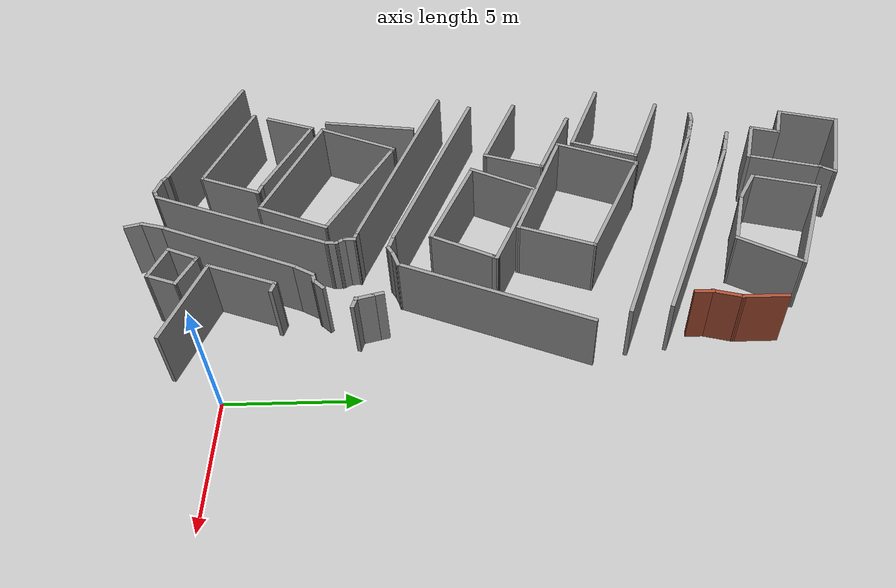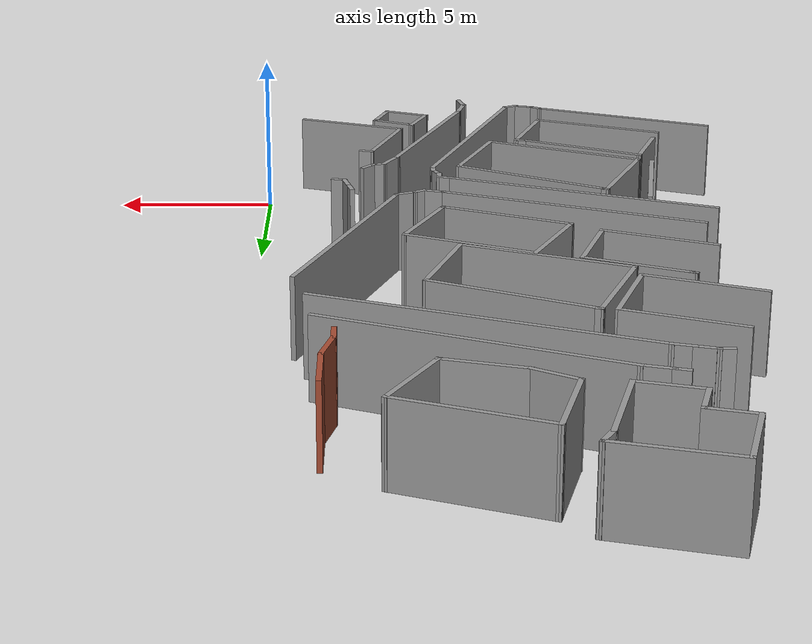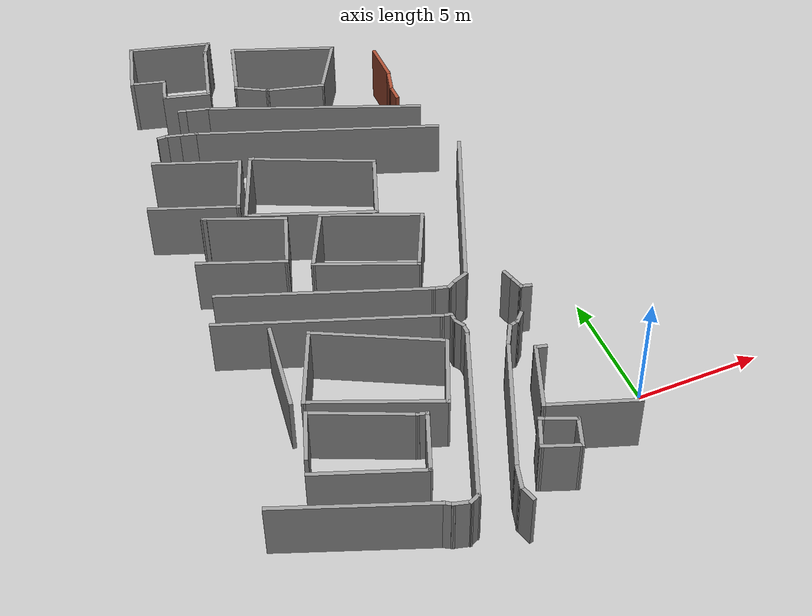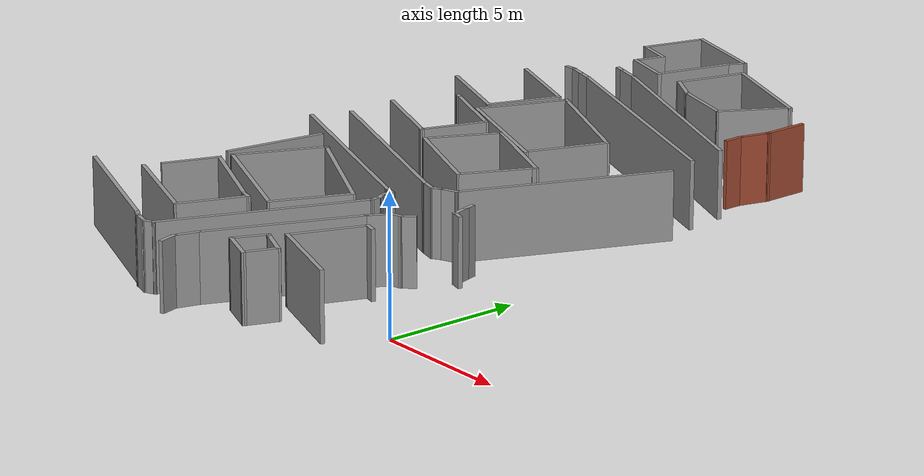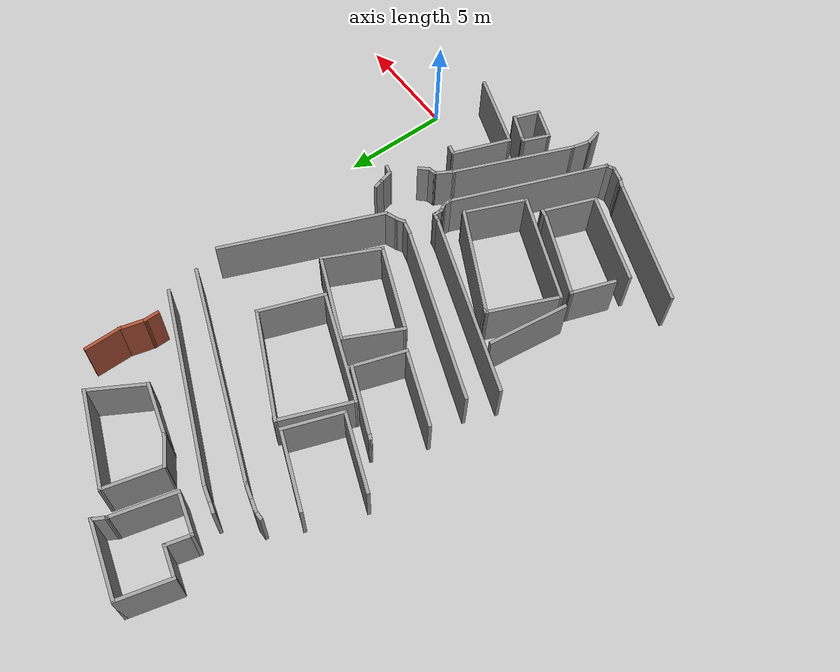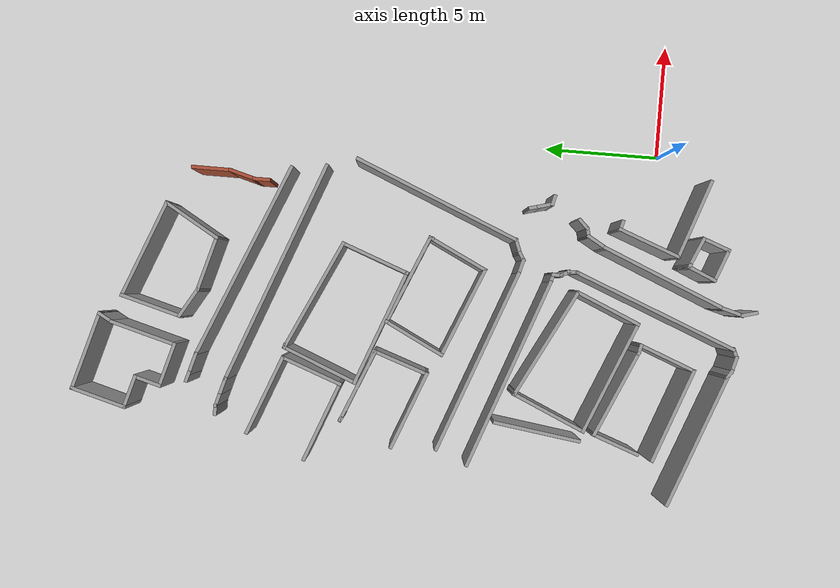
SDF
<sdf version="1.6">
 <model name="palazzo">
  <pose>-1.20783 -1.18535 0 0 -0 0</pose>
  <link name="Wall_1004">
   <collision name="Wall_1004_Collision">
    <geometry><box><size>3.78119 0.15 2.5</size></box></geometry>
    <pose>0 0 1.25 0 -0 0</pose>
   </collision>
   <visual name="Wall_1004_Visual">
    <pose>0 0 1.25 0 -0 0</pose>
    <geometry><box><size>3.78119 0.15 2.5</size></box></geometry>
    <material>
     <script><uri>file://media/materials/scripts/gazebo.material</uri><name>Gazebo/Grey</name></script>
     <ambient>1 1 1 1</ambient>
    </material>
    <meta><layer>0</layer></meta>
   </visual>
   <pose>-11.1316 5.89414 0 0 -0 1.43501</pose>
  </link>
  <link name="Wall_160">
   <collision name="Wall_160_Collision">
    <geometry><box><size>1 0.15 2.5</size></box></geometry>
    <pose>0 0 1.25 0 -0 0</pose>
   </collision>
   <visual name="Wall_160_Visual">
    <pose>0 0 1.25 0 -0 0</pose>
    <geometry><box><size>1 0.15 2.5</size></box></geometry>
    <material>
     <script><uri>file://media/materials/scripts/gazebo.material</uri><name>Gazebo/Grey</name></script>
     <ambient>1 1 1 1</ambient>
    </material>
    <meta><layer>0</layer></meta>
   </visual>
   <pose>-2.90729 3.99566 0 0 -0 -2.0944</pose>
  </link>
  <link name="Wall_216">
   <collision name="Wall_216_Collision">
    <geometry><box><size>1 0.15 2.5</size></box></geometry>
    <pose>0 0 1.25 0 -0 0</pose>
   </collision>
   <visual name="Wall_216_Visual">
    <pose>0 0 1.25 0 -0 0</pose>
    <geometry><box><size>1 0.15 2.5</size></box></geometry>
    <material>
     <script><uri>file://media/materials/scripts/gazebo.material</uri><name>Gazebo/Grey</name></script>
     <ambient>1 1 1 1</ambient>
    </material>
    <meta><layer>0</layer></meta>
   </visual>
   <pose>-5.38705 -1.99917 0 0 -0 1.309</pose>
  </link>
  <link name="Wall_218">
   <collision name="Wall_218_Collision">
    <geometry><box><size>5.79474 0.15 2.5</size></box></geometry>
    <pose>0 0 1.25 0 -0 0</pose>
   </collision>
   <visual name="Wall_218_Visual">
    <pose>0 0 1.25 0 -0 0</pose>
    <geometry><box><size>5.79474 0.15 2.5</size></box></geometry>
    <material>
     <script><uri>file://media/materials/scripts/gazebo.material</uri><name>Gazebo/Grey</name></script>
     <ambient>1 1 1 1</ambient>
    </material>
    <meta><layer>0</layer></meta>
   </visual>
   <pose>-4.19843 1.01948 0 0 -0 1.17865</pose>
  </link>
  <link name="Wall_220">
   <collision name="Wall_220_Collision">
    <geometry><box><size>0.75 0.15 2.5</size></box></geometry>
    <pose>0 0 1.25 0 -0 0</pose>
   </collision>
   <visual name="Wall_220_Visual">
    <pose>0 0 1.25 0 -0 0</pose>
    <geometry><box><size>0.75 0.15 2.5</size></box></geometry>
    <material>
     <script><uri>file://media/materials/scripts/gazebo.material</uri><name>Gazebo/Grey</name></script>
     <ambient>1 1 1 1</ambient>
    </material>
    <meta><layer>0</layer></meta>
   </visual>
   <pose>-5.41941 -2.69946 0 0 -0 -1.309</pose>
  </link>
  <link name="Wall_23">
   <collision name="Wall_23_Collision">
    <geometry><box><size>1.75 0.15 2.5</size></box></geometry>
    <pose>0 0 1.25 0 -0 0</pose>
   </collision>
   <visual name="Wall_23_Visual">
    <pose>0 0 1.25 0 -0 0</pose>
    <geometry><box><size>1.75 0.15 2.5</size></box></geometry>
    <material>
     <script><uri>file://media/materials/scripts/gazebo.material</uri><name>Gazebo/Bricks</name></script>
     <ambient>1 1 1 1</ambient>
    </material>
    <meta><layer>0</layer></meta>
   </visual>
   <pose>-1.16027 20.6107 0 0 -0 -1.5708</pose>
  </link>
  <link name="Wall_24">
   <collision name="Wall_24_Collision">
    <geometry><box><size>1.25 0.15 2.5</size></box></geometry>
    <pose>0 0 1.25 0 -0 0</pose>
   </collision>
   <visual name="Wall_24_Visual">
    <pose>0 0 1.25 0 -0 0</pose>
    <geometry><box><size>1.25 0.15 2.5</size></box></geometry>
    <material>
     <script><uri>file://media/materials/scripts/gazebo.material</uri><name>Gazebo/Bricks</name></script>
     <ambient>1 1 1 1</ambient>
    </material>
    <meta><layer>0</layer></meta>
   </visual>
   <pose>-1.30262 19.2794 0 0 -0 -1.8326</pose>
  </link>
  <link name="Wall_25">
   <collision name="Wall_25_Collision">
    <geometry><box><size>0.75 0.15 2.5</size></box></geometry>
    <pose>0 0 1.25 0 -0 0</pose>
   </collision>
   <visual name="Wall_25_Visual">
    <pose>0 0 1.25 0 -0 0</pose>
    <geometry><box><size>0.75 0.15 2.5</size></box></geometry>
    <material>
     <script><uri>file://media/materials/scripts/gazebo.material</uri><name>Gazebo/Bricks</name></script>
     <ambient>1 1 1 1</ambient>
    </material>
    <meta><layer>0</layer></meta>
   </visual>
   <pose>-1.44497 18.4482 0 0 -0 -1.5708</pose>
  </link>
  <link name="Wall_255">
   <collision name="Wall_255_Collision">
    <geometry><box><size>0.510576 0.15 2.5</size></box></geometry>
    <pose>0 0 1.25 0 -0 0</pose>
   </collision>
   <visual name="Wall_255_Visual">
    <pose>0 0 1.25 0 -0 0</pose>
    <geometry><box><size>0.510576 0.15 2.5</size></box></geometry>
    <material>
     <script><uri>file://media/materials/scripts/gazebo.material</uri><name>Gazebo/Grey</name></script>
     <ambient>1 1 1 1</ambient>
    </material>
    <meta><layer>0</layer></meta>
   </visual>
   <pose>-7.14053 -2.22192 0 0 -0 -2.71135</pose>
  </link>
  <link name="Wall_256">
   <collision name="Wall_256_Collision">
    <geometry><box><size>0.75 0.15 2.5</size></box></geometry>
    <pose>0 0 1.25 0 -0 0</pose>
   </collision>
   <visual name="Wall_256_Visual">
    <pose>0 0 1.25 0 -0 0</pose>
    <geometry><box><size>0.75 0.15 2.5</size></box></geometry>
    <material>
     <script><uri>file://media/materials/scripts/gazebo.material</uri><name>Gazebo/Grey</name></script>
     <ambient>1 1 1 1</ambient>
    </material>
    <meta><layer>0</layer></meta>
   </visual>
   <pose>-7.59417 -2.21947 0 0 -0 2.87979</pose>
  </link>
  <link name="Wall_257">
   <collision name="Wall_257_Collision">
    <geometry><box><size>0.5 0.15 2.5</size></box></geometry>
    <pose>0 0 1.25 0 -0 0</pose>
   </collision>
   <visual name="Wall_257_Visual">
    <pose>0 0 1.25 0 -0 0</pose>
    <geometry><box><size>0.5 0.15 2.5</size></box></geometry>
    <material>
     <script><uri>file://media/materials/scripts/gazebo.material</uri><name>Gazebo/Grey</name></script>
     <ambient>1 1 1 1</ambient>
    </material>
    <meta><layer>0</layer></meta>
   </visual>
   <pose>-8.0355 -2.05432 0 0 -0 2.61799</pose>
  </link>
  <link name="Wall_260">
   <collision name="Wall_260_Collision">
    <geometry><box><size>6.09185 0.15 2.5</size></box></geometry>
    <pose>0 0 1.25 0 -0 0</pose>
   </collision>
   <visual name="Wall_260_Visual">
    <pose>0 0 1.25 0 -0 0</pose>
    <geometry><box><size>6.09185 0.15 2.5</size></box></geometry>
    <material>
     <script><uri>file://media/materials/scripts/gazebo.material</uri><name>Gazebo/Grey</name></script>
     <ambient>1 1 1 1</ambient>
    </material>
    <meta><layer>0</layer></meta>
   </visual>
   <pose>-10.9591 -0.898025 0 0 -0 -0.368002</pose>
  </link>
  <link name="Wall_30">
   <collision name="Wall_30_Collision">
    <geometry><box><size>2.75 0.15 2.5</size></box></geometry>
    <pose>0 0 1.25 0 -0 0</pose>
   </collision>
   <visual name="Wall_30_Visual">
    <pose>0 0 1.25 0 -0 0</pose>
    <geometry><box><size>2.75 0.15 2.5</size></box></geometry>
    <material>
     <script><uri>file://media/materials/scripts/gazebo.material</uri><name>Gazebo/Grey</name></script>
     <ambient>1 1 1 1</ambient>
    </material>
    <meta><layer>0</layer></meta>
   </visual>
   <pose>-7.18393 22.6784 0 0 -0 -1.8326</pose>
  </link>
  <link name="Wall_31">
   <collision name="Wall_31_Collision">
    <geometry><box><size>1.5 0.15 2.5</size></box></geometry>
    <pose>0 0 1.25 0 -0 0</pose>
   </collision>
   <visual name="Wall_31_Visual">
    <pose>0 0 1.25 0 -0 0</pose>
    <geometry><box><size>1.5 0.15 2.5</size></box></geometry>
    <material>
     <script><uri>file://media/materials/scripts/gazebo.material</uri><name>Gazebo/Grey</name></script>
     <ambient>1 1 1 1</ambient>
    </material>
    <meta><layer>0</layer></meta>
   </visual>
   <pose>-6.93583 21.0852 0 0 -0 -0.523599</pose>
  </link>
  <link name="Wall_32">
   <collision name="Wall_32_Collision">
    <geometry><box><size>2.5 0.15 2.5</size></box></geometry>
    <pose>0 0 1.25 0 -0 0</pose>
   </collision>
   <visual name="Wall_32_Visual">
    <pose>0 0 1.25 0 -0 0</pose>
    <geometry><box><size>2.5 0.15 2.5</size></box></geometry>
    <material>
     <script><uri>file://media/materials/scripts/gazebo.material</uri><name>Gazebo/Grey</name></script>
     <ambient>1 1 1 1</ambient>
    </material>
    <meta><layer>0</layer></meta>
   </visual>
   <pose>-5.2163 20.4436 0 0 -0 -0.261799</pose>
  </link>
  <link name="Wall_33">
   <collision name="Wall_33_Collision">
    <geometry><box><size>2.75 0.15 2.5</size></box></geometry>
    <pose>0 0 1.25 0 -0 0</pose>
   </collision>
   <visual name="Wall_33_Visual">
    <pose>0 0 1.25 0 -0 0</pose>
    <geometry><box><size>2.75 0.15 2.5</size></box></geometry>
    <material>
     <script><uri>file://media/materials/scripts/gazebo.material</uri><name>Gazebo/Grey</name></script>
     <ambient>1 1 1 1</ambient>
    </material>
    <meta><layer>0</layer></meta>
   </visual>
   <pose>-3.43134 21.2654 0 0 -0 1.0472</pose>
  </link>
  <link name="Wall_34">
   <collision name="Wall_34_Collision">
    <geometry><box><size>4.49904 0.15 2.5</size></box></geometry>
    <pose>0 0 1.25 0 -0 0</pose>
   </collision>
   <visual name="Wall_34_Visual">
    <pose>0 0 1.25 0 -0 0</pose>
    <geometry><box><size>4.49904 0.15 2.5</size></box></geometry>
    <material>
     <script><uri>file://media/materials/scripts/gazebo.material</uri><name>Gazebo/Grey</name></script>
     <ambient>1 1 1 1</ambient>
    </material>
    <meta><layer>0</layer></meta>
   </visual>
   <pose>-4.8144 23.1627 0 0 -0 2.77891</pose>
  </link>
  <link name="Wall_36">
   <collision name="Wall_36_Collision">
    <geometry><box><size>2.5 0.15 2.5</size></box></geometry>
    <pose>0 0 1.25 0 -0 0</pose>
   </collision>
   <visual name="Wall_36_Visual">
    <pose>0 0 1.25 0 -0 0</pose>
    <geometry><box><size>2.5 0.15 2.5</size></box></geometry>
    <material>
     <script><uri>file://media/materials/scripts/gazebo.material</uri><name>Gazebo/Grey</name></script>
     <ambient>1 1 1 1</ambient>
    </material>
    <meta><layer>0</layer></meta>
   </visual>
   <pose>-11.2469 24.5452 0 0 -0 -1.8326</pose>
  </link>
  <link name="Wall_37">
   <collision name="Wall_37_Collision">
    <geometry><box><size>1.5 0.15 2.5</size></box></geometry>
    <pose>0 0 1.25 0 -0 0</pose>
   </collision>
   <visual name="Wall_37_Visual">
    <pose>0 0 1.25 0 -0 0</pose>
    <geometry><box><size>1.5 0.15 2.5</size></box></geometry>
    <material>
     <script><uri>file://media/materials/scripts/gazebo.material</uri><name>Gazebo/Grey</name></script>
     <ambient>1 1 1 1</ambient>
    </material>
    <meta><layer>0</layer></meta>
   </visual>
   <pose>-10.899 23.2356 0 0 -0 -0.261799</pose>
  </link>
  <link name="Wall_38">
   <collision name="Wall_38_Collision">
    <geometry><box><size>1.25 0.15 2.5</size></box></geometry>
    <pose>0 0 1.25 0 -0 0</pose>
   </collision>
   <visual name="Wall_38_Visual">
    <pose>0 0 1.25 0 -0 0</pose>
    <geometry><box><size>1.25 0.15 2.5</size></box></geometry>
    <material>
     <script><uri>file://media/materials/scripts/gazebo.material</uri><name>Gazebo/Grey</name></script>
     <ambient>1 1 1 1</ambient>
    </material>
    <meta><layer>0</layer></meta>
   </visual>
   <pose>-10.3893 22.5296 0 0 -0 -1.8326</pose>
  </link>
  <link name="Wall_39">
   <collision name="Wall_39_Collision">
    <geometry><box><size>2 0.15 2.5</size></box></geometry>
    <pose>0 0 1.25 0 -0 0</pose>
   </collision>
   <visual name="Wall_39_Visual">
    <pose>0 0 1.25 0 -0 0</pose>
    <geometry><box><size>2 0.15 2.5</size></box></geometry>
    <material>
     <script><uri>file://media/materials/scripts/gazebo.material</uri><name>Gazebo/Grey</name></script>
     <ambient>1 1 1 1</ambient>
    </material>
    <meta><layer>0</layer></meta>
   </visual>
   <pose>-9.63821 21.7589 0 0 -0 -0.261799</pose>
  </link>
  <link name="Wall_40">
   <collision name="Wall_40_Collision">
    <geometry><box><size>3 0.15 2.5</size></box></geometry>
    <pose>0 0 1.25 0 -0 0</pose>
   </collision>
   <visual name="Wall_40_Visual">
    <pose>0 0 1.25 0 -0 0</pose>
    <geometry><box><size>3 0.15 2.5</size></box></geometry>
    <material>
     <script><uri>file://media/materials/scripts/gazebo.material</uri><name>Gazebo/Grey</name></script>
     <ambient>1 1 1 1</ambient>
    </material>
    <meta><layer>0</layer></meta>
   </visual>
   <pose>-8.37591 22.896 0 0 -0 1.309</pose>
  </link>
  <link name="Wall_42">
   <collision name="Wall_42_Collision">
    <geometry><box><size>3.5 0.15 2.5</size></box></geometry>
    <pose>0 0 1.25 0 -0 0</pose>
   </collision>
   <visual name="Wall_42_Visual">
    <pose>0 0 1.25 0 -0 0</pose>
    <geometry><box><size>3.5 0.15 2.5</size></box></geometry>
    <material>
     <script><uri>file://media/materials/scripts/gazebo.material</uri><name>Gazebo/Grey</name></script>
     <ambient>1 1 1 1</ambient>
    </material>
    <meta><layer>0</layer></meta>
   </visual>
   <pose>-9.32484 25.2467 0 0 -0 -0.261799</pose>
  </link>
  <link name="Wall_43">
   <collision name="Wall_43_Collision">
    <geometry><box><size>0.768466 0.15 2.5</size></box></geometry>
    <pose>0 0 1.25 0 -0 0</pose>
   </collision>
   <visual name="Wall_43_Visual">
    <pose>0 0 1.25 0 -0 0</pose>
    <geometry><box><size>0.768466 0.15 2.5</size></box></geometry>
    <material>
     <script><uri>file://media/materials/scripts/gazebo.material</uri><name>Gazebo/Grey</name></script>
     <ambient>1 1 1 1</ambient>
    </material>
    <meta><layer>0</layer></meta>
   </visual>
   <pose>-7.857 24.5428 0 0 -0 -2.07757</pose>
  </link>
  <link name="Wall_666">
   <collision name="Wall_666_Collision">
    <geometry><box><size>1 0.15 2.5</size></box></geometry>
    <pose>0 0 1.25 0 -0 0</pose>
   </collision>
   <visual name="Wall_666_Visual">
    <pose>0 0 1.25 0 -0 0</pose>
    <geometry><box><size>1 0.15 2.5</size></box></geometry>
    <material>
     <script><uri>file://media/materials/scripts/gazebo.material</uri><name>Gazebo/Grey</name></script>
     <ambient>1 1 1 1</ambient>
    </material>
    <meta><layer>0</layer></meta>
   </visual>
   <pose>-9.47326 20.685 0 0 -0 -0.261799</pose>
  </link>
  <link name="Wall_667">
   <collision name="Wall_667_Collision">
    <geometry><box><size>9.03925 0.15 2.5</size></box></geometry>
    <pose>0 0 1.25 0 -0 0</pose>
   </collision>
   <visual name="Wall_667_Visual">
    <pose>0 0 1.25 0 -0 0</pose>
    <geometry><box><size>9.03925 0.15 2.5</size></box></geometry>
    <material>
     <script><uri>file://media/materials/scripts/gazebo.material</uri><name>Gazebo/Grey</name></script>
     <ambient>1 1 1 1</ambient>
    </material>
    <meta><layer>0</layer></meta>
   </visual>
   <pose>-4.94569 18.9003 0 0 -0 -0.386327</pose>
  </link>
  <link name="Wall_672">
   <collision name="Wall_672_Collision">
    <geometry><box><size>10.1614 0.15 2.5</size></box></geometry>
    <pose>0 0 1.25 0 -0 0</pose>
   </collision>
   <visual name="Wall_672_Visual">
    <pose>0 0 1.25 0 -0 0</pose>
    <geometry><box><size>10.1614 0.15 2.5</size></box></geometry>
    <material>
     <script><uri>file://media/materials/scripts/gazebo.material</uri><name>Gazebo/Grey</name></script>
     <ambient>1 1 1 1</ambient>
    </material>
    <meta><layer>0</layer></meta>
   </visual>
   <pose>-5.32134 17.4885 0 0 -0 -0.357181</pose>
  </link>
  <link name="Wall_674">
   <collision name="Wall_674_Collision">
    <geometry><box><size>0.75 0.15 2.5</size></box></geometry>
    <pose>0 0 1.25 0 -0 0</pose>
   </collision>
   <visual name="Wall_674_Visual">
    <pose>0 0 1.25 0 -0 0</pose>
    <geometry><box><size>0.75 0.15 2.5</size></box></geometry>
    <material>
     <script><uri>file://media/materials/scripts/gazebo.material</uri><name>Gazebo/Grey</name></script>
     <ambient>1 1 1 1</ambient>
    </material>
    <meta><layer>0</layer></meta>
   </visual>
   <pose>-10.3009 19.3163 0 0 -0 2.87979</pose>
  </link>
  <link name="Wall_675">
   <collision name="Wall_675_Collision">
    <geometry><box><size>0.75 0.15 2.5</size></box></geometry>
    <pose>0 0 1.25 0 -0 0</pose>
   </collision>
   <visual name="Wall_675_Visual">
    <pose>0 0 1.25 0 -0 0</pose>
    <geometry><box><size>0.75 0.15 2.5</size></box></geometry>
    <material>
     <script><uri>file://media/materials/scripts/gazebo.material</uri><name>Gazebo/Grey</name></script>
     <ambient>1 1 1 1</ambient>
    </material>
    <meta><layer>0</layer></meta>
   </visual>
   <pose>-10.8804 19.4716 0 0 -0 2.87979</pose>
  </link>
  <link name="Wall_676">
   <collision name="Wall_676_Collision">
    <geometry><box><size>0.5 0.15 2.5</size></box></geometry>
    <pose>0 0 1.25 0 -0 0</pose>
   </collision>
   <visual name="Wall_676_Visual">
    <pose>0 0 1.25 0 -0 0</pose>
    <geometry><box><size>0.5 0.15 2.5</size></box></geometry>
    <material>
     <script><uri>file://media/materials/scripts/gazebo.material</uri><name>Gazebo/Grey</name></script>
     <ambient>1 1 1 1</ambient>
    </material>
    <meta><layer>0</layer></meta>
   </visual>
   <pose>-11.3452 19.5493 0 0 -0 3.14159</pose>
  </link>
  <link name="Wall_682">
   <collision name="Wall_682_Collision">
    <geometry><box><size>0.5 0.15 2.5</size></box></geometry>
    <pose>0 0 1.25 0 -0 0</pose>
   </collision>
   <visual name="Wall_682_Visual">
    <pose>0 0 1.25 0 -0 0</pose>
    <geometry><box><size>0.5 0.15 2.5</size></box></geometry>
    <material>
     <script><uri>file://media/materials/scripts/gazebo.material</uri><name>Gazebo/Grey</name></script>
     <ambient>1 1 1 1</ambient>
    </material>
    <meta><layer>0</layer></meta>
   </visual>
   <pose>-10.0528 20.8403 0 0 -0 2.87979</pose>
  </link>
  <link name="Wall_697">
   <collision name="Wall_697_Collision">
    <geometry><box><size>7.71367 0.15 2.5</size></box></geometry>
    <pose>0 0 1.25 0 -0 0</pose>
   </collision>
   <visual name="Wall_697_Visual">
    <pose>0 0 1.25 0 -0 0</pose>
    <geometry><box><size>7.71367 0.15 2.5</size></box></geometry>
    <material>
     <script><uri>file://media/materials/scripts/gazebo.material</uri><name>Gazebo/Grey</name></script>
     <ambient>1 1 1 1</ambient>
    </material>
    <meta><layer>0</layer></meta>
   </visual>
   <pose>-1.6657 10.9339 0 0 -0 1.18054</pose>
  </link>
  <link name="Wall_707">
   <collision name="Wall_707_Collision">
    <geometry><box><size>0.5 0.15 2.5</size></box></geometry>
    <pose>0 0 1.25 0 -0 0</pose>
   </collision>
   <visual name="Wall_707_Visual">
    <pose>0 0 1.25 0 -0 0</pose>
    <geometry><box><size>0.5 0.15 2.5</size></box></geometry>
    <material>
     <script><uri>file://media/materials/scripts/gazebo.material</uri><name>Gazebo/Grey</name></script>
     <ambient>1 1 1 1</ambient>
    </material>
    <meta><layer>0</layer></meta>
   </visual>
   <pose>-1.65656 6.76296 0 0 -0 -1.309</pose>
  </link>
  <link name="Wall_708">
   <collision name="Wall_708_Collision">
    <geometry><box><size>0.75 0.15 2.5</size></box></geometry>
    <pose>0 0 1.25 0 -0 0</pose>
   </collision>
   <visual name="Wall_708_Visual">
    <pose>0 0 1.25 0 -0 0</pose>
    <geometry><box><size>0.75 0.15 2.5</size></box></geometry>
    <material>
     <script><uri>file://media/materials/scripts/gazebo.material</uri><name>Gazebo/Grey</name></script>
     <ambient>1 1 1 1</ambient>
    </material>
    <meta><layer>0</layer></meta>
   </visual>
   <pose>-1.53362 6.30415 0 0 -0 -1.309</pose>
  </link>
  <link name="Wall_709">
   <collision name="Wall_709_Collision">
    <geometry><box><size>0.5 0.15 2.5</size></box></geometry>
    <pose>0 0 1.25 0 -0 0</pose>
   </collision>
   <visual name="Wall_709_Visual">
    <pose>0 0 1.25 0 -0 0</pose>
    <geometry><box><size>0.5 0.15 2.5</size></box></geometry>
    <material>
     <script><uri>file://media/materials/scripts/gazebo.material</uri><name>Gazebo/Grey</name></script>
     <ambient>1 1 1 1</ambient>
    </material>
    <meta><layer>0</layer></meta>
   </visual>
   <pose>-1.28694 5.96908 0 0 -0 -0.261799</pose>
  </link>
  <link name="Wall_723">
   <collision name="Wall_723_Collision">
    <geometry><box><size>0.5 0.15 2.5</size></box></geometry>
    <pose>0 0 1.25 0 -0 0</pose>
   </collision>
   <visual name="Wall_723_Visual">
    <pose>0 0 1.25 0 -0 0</pose>
    <geometry><box><size>0.5 0.15 2.5</size></box></geometry>
    <material>
     <script><uri>file://media/materials/scripts/gazebo.material</uri><name>Gazebo/Grey</name></script>
     <ambient>1 1 1 1</ambient>
    </material>
    <meta><layer>0</layer></meta>
   </visual>
   <pose>-2.52576 4.40902 0 0 -0 0.261799</pose>
  </link>
  <link name="Wall_724">
   <collision name="Wall_724_Collision">
    <geometry><box><size>0.60709 0.15 2.5</size></box></geometry>
    <pose>0 0 1.25 0 -0 0</pose>
   </collision>
   <visual name="Wall_724_Visual">
    <pose>0 0 1.25 0 -0 0</pose>
    <geometry><box><size>0.60709 0.15 2.5</size></box></geometry>
    <material>
     <script><uri>file://media/materials/scripts/gazebo.material</uri><name>Gazebo/Grey</name></script>
     <ambient>1 1 1 1</ambient>
    </material>
    <meta><layer>0</layer></meta>
   </visual>
   <pose>-2.19854 4.61927 0 0 -0 0.806383</pose>
  </link>
  <link name="Wall_726">
   <collision name="Wall_726_Collision">
    <geometry><box><size>0.5 0.15 2.5</size></box></geometry>
    <pose>0 0 1.25 0 -0 0</pose>
   </collision>
   <visual name="Wall_726_Visual">
    <pose>0 0 1.25 0 -0 0</pose>
    <geometry><box><size>0.5 0.15 2.5</size></box></geometry>
    <material>
     <script><uri>file://media/materials/scripts/gazebo.material</uri><name>Gazebo/Grey</name></script>
     <ambient>1 1 1 1</ambient>
    </material>
    <meta><layer>0</layer></meta>
   </visual>
   <pose>-3.79436 7.13805 0 0 -0 0.523599</pose>
  </link>
  <link name="Wall_727">
   <collision name="Wall_727_Collision">
    <geometry><box><size>0.72824 0.15 2.5</size></box></geometry>
    <pose>0 0 1.25 0 -0 0</pose>
   </collision>
   <visual name="Wall_727_Visual">
    <pose>0 0 1.25 0 -0 0</pose>
    <geometry><box><size>0.72824 0.15 2.5</size></box></geometry>
    <material>
     <script><uri>file://media/materials/scripts/gazebo.material</uri><name>Gazebo/Grey</name></script>
     <ambient>1 1 1 1</ambient>
    </material>
    <meta><layer>0</layer></meta>
   </visual>
   <pose>-3.3736 7.33098 0 0 -0 0.373286</pose>
  </link>
  <link name="Wall_729">
   <collision name="Wall_729_Collision">
    <geometry><box><size>0.75 0.15 2.5</size></box></geometry>
    <pose>0 0 1.25 0 -0 0</pose>
   </collision>
   <visual name="Wall_729_Visual">
    <pose>0 0 1.25 0 -0 0</pose>
    <geometry><box><size>0.75 0.15 2.5</size></box></geometry>
    <material>
     <script><uri>file://media/materials/scripts/gazebo.material</uri><name>Gazebo/Grey</name></script>
     <ambient>1 1 1 1</ambient>
    </material>
    <meta><layer>0</layer></meta>
   </visual>
   <pose>-4.23569 7.12819 0 0 -0 2.87979</pose>
  </link>
  <link name="Wall_731">
   <collision name="Wall_731_Collision">
    <geometry><box><size>8.36959 0.15 2.5</size></box></geometry>
    <pose>0 0 1.25 0 -0 0</pose>
   </collision>
   <visual name="Wall_731_Visual">
    <pose>0 0 1.25 0 -0 0</pose>
    <geometry><box><size>8.36959 0.15 2.5</size></box></geometry>
    <material>
     <script><uri>file://media/materials/scripts/gazebo.material</uri><name>Gazebo/Grey</name></script>
     <ambient>1 1 1 1</ambient>
    </material>
    <meta><layer>0</layer></meta>
   </visual>
   <pose>-8.37475 8.64579 0 0 -0 -0.357968</pose>
  </link>
  <link name="Wall_748">
   <collision name="Wall_748_Collision">
    <geometry><box><size>0.5 0.15 2.5</size></box></geometry>
    <pose>0 0 1.25 0 -0 0</pose>
   </collision>
   <visual name="Wall_748_Visual">
    <pose>0 0 1.25 0 -0 0</pose>
    <geometry><box><size>0.5 0.15 2.5</size></box></geometry>
    <material>
     <script><uri>file://media/materials/scripts/gazebo.material</uri><name>Gazebo/Grey</name></script>
     <ambient>1 1 1 1</ambient>
    </material>
    <meta><layer>0</layer></meta>
   </visual>
   <pose>-4.61651 5.77793 0 0 -0 2.87979</pose>
  </link>
  <link name="Wall_749">
   <collision name="Wall_749_Collision">
    <geometry><box><size>8.65807 0.15 2.5</size></box></geometry>
    <pose>0 0 1.25 0 -0 0</pose>
   </collision>
   <visual name="Wall_749_Visual">
    <pose>0 0 1.25 0 -0 0</pose>
    <geometry><box><size>8.65807 0.15 2.5</size></box></geometry>
    <material>
     <script><uri>file://media/materials/scripts/gazebo.material</uri><name>Gazebo/Grey</name></script>
     <ambient>1 1 1 1</ambient>
    </material>
    <meta><layer>0</layer></meta>
   </visual>
   <pose>-8.78122 7.28318 0 0 -0 2.79128</pose>
  </link>
  <link name="Wall_751">
   <collision name="Wall_751_Collision">
    <geometry><box><size>0.5 0.15 2.5</size></box></geometry>
    <pose>0 0 1.25 0 -0 0</pose>
   </collision>
   <visual name="Wall_751_Visual">
    <pose>0 0 1.25 0 -0 0</pose>
    <geometry><box><size>0.5 0.15 2.5</size></box></geometry>
    <material>
     <script><uri>file://media/materials/scripts/gazebo.material</uri><name>Gazebo/Grey</name></script>
     <ambient>1 1 1 1</ambient>
    </material>
    <meta><layer>0</layer></meta>
   </visual>
   <pose>-4.44748 5.55764 0 0 -0 -1.5708</pose>
  </link>
  <link name="Wall_754">
   <collision name="Wall_754_Collision">
    <geometry><box><size>0.5 0.15 2.5</size></box></geometry>
    <pose>0 0 1.25 0 -0 0</pose>
   </collision>
   <visual name="Wall_754_Visual">
    <pose>0 0 1.25 0 -0 0</pose>
    <geometry><box><size>0.5 0.15 2.5</size></box></geometry>
    <material>
     <script><uri>file://media/materials/scripts/gazebo.material</uri><name>Gazebo/Grey</name></script>
     <ambient>1 1 1 1</ambient>
    </material>
    <meta><layer>0</layer></meta>
   </visual>
   <pose>-4.35998 5.23108 0 0 -0 -1.0472</pose>
  </link>
  <link name="Wall_755">
   <collision name="Wall_755_Collision">
    <geometry><box><size>0.5 0.15 2.5</size></box></geometry>
    <pose>0 0 1.25 0 -0 0</pose>
   </collision>
   <visual name="Wall_755_Visual">
    <pose>0 0 1.25 0 -0 0</pose>
    <geometry><box><size>0.5 0.15 2.5</size></box></geometry>
    <material>
     <script><uri>file://media/materials/scripts/gazebo.material</uri><name>Gazebo/Grey</name></script>
     <ambient>1 1 1 1</ambient>
    </material>
    <meta><layer>0</layer></meta>
   </visual>
   <pose>-4.27248 4.90453 0 0 -0 -1.5708</pose>
  </link>
  <link name="Wall_757">
   <collision name="Wall_757_Collision">
    <geometry><box><size>7.53887 0.15 2.5</size></box></geometry>
    <pose>0 0 1.25 0 -0 0</pose>
   </collision>
   <visual name="Wall_757_Visual">
    <pose>0 0 1.25 0 -0 0</pose>
    <geometry><box><size>7.53887 0.15 2.5</size></box></geometry>
    <material>
     <script><uri>file://media/materials/scripts/gazebo.material</uri><name>Gazebo/Grey</name></script>
     <ambient>1 1 1 1</ambient>
    </material>
    <meta><layer>0</layer></meta>
   </visual>
   <pose>-5.62458 1.2914 0 0 -0 1.19611</pose>
  </link>
  <link name="Wall_789">
   <collision name="Wall_789_Collision">
    <geometry><box><size>0.25 0.15 2.5</size></box></geometry>
    <pose>0 0 1.25 0 -0 0</pose>
   </collision>
   <visual name="Wall_789_Visual">
    <pose>0 0 1.25 0 -0 0</pose>
    <geometry><box><size>0.25 0.15 2.5</size></box></geometry>
    <material>
     <script><uri>file://media/materials/scripts/gazebo.material</uri><name>Gazebo/Grey</name></script>
     <ambient>1 1 1 1</ambient>
    </material>
    <meta><layer>0</layer></meta>
   </visual>
   <pose>-3.33606 11.0279 0 0 -0 -1.8326</pose>
  </link>
  <link name="Wall_791">
   <collision name="Wall_791_Collision">
    <geometry><box><size>2.85803 0.15 2.5</size></box></geometry>
    <pose>0 0 1.25 0 -0 0</pose>
   </collision>
   <visual name="Wall_791_Visual">
    <pose>0 0 1.25 0 -0 0</pose>
    <geometry><box><size>2.85803 0.15 2.5</size></box></geometry>
    <material>
     <script><uri>file://media/materials/scripts/gazebo.material</uri><name>Gazebo/Grey</name></script>
     <ambient>1 1 1 1</ambient>
    </material>
    <meta><layer>0</layer></meta>
   </visual>
   <pose>-3.91099 9.8565 0 0 -0 1.12168</pose>
  </link>
  <link name="Wall_794">
   <collision name="Wall_794_Collision">
    <geometry><box><size>4.16515 0.15 2.5</size></box></geometry>
    <pose>0 0 1.25 0 -0 0</pose>
   </collision>
   <visual name="Wall_794_Visual">
    <pose>0 0 1.25 0 -0 0</pose>
    <geometry><box><size>4.16515 0.15 2.5</size></box></geometry>
    <material>
     <script><uri>file://media/materials/scripts/gazebo.material</uri><name>Gazebo/Grey</name></script>
     <ambient>1 1 1 1</ambient>
    </material>
    <meta><layer>0</layer></meta>
   </visual>
   <pose>-5.17472 11.8521 0 0 -0 -0.396783</pose>
  </link>
  <link name="Wall_796">
   <collision name="Wall_796_Collision">
    <geometry><box><size>2.87208 0.15 2.5</size></box></geometry>
    <pose>0 0 1.25 0 -0 0</pose>
   </collision>
   <visual name="Wall_796_Visual">
    <pose>0 0 1.25 0 -0 0</pose>
    <geometry><box><size>2.87208 0.15 2.5</size></box></geometry>
    <material>
     <script><uri>file://media/materials/scripts/gazebo.material</uri><name>Gazebo/Grey</name></script>
     <ambient>1 1 1 1</ambient>
    </material>
    <meta><layer>0</layer></meta>
   </visual>
   <pose>-7.63019 11.4082 0 0 -0 1.11109</pose>
  </link>
  <link name="Wall_798">
   <collision name="Wall_798_Collision">
    <geometry><box><size>4.19468 0.15 2.5</size></box></geometry>
    <pose>0 0 1.25 0 -0 0</pose>
   </collision>
   <visual name="Wall_798_Visual">
    <pose>0 0 1.25 0 -0 0</pose>
    <geometry><box><size>4.19468 0.15 2.5</size></box></geometry>
    <material>
     <script><uri>file://media/materials/scripts/gazebo.material</uri><name>Gazebo/Grey</name></script>
     <ambient>1 1 1 1</ambient>
    </material>
    <meta><layer>0</layer></meta>
   </visual>
   <pose>-6.36646 9.41259 0 0 -0 -0.393726</pose>
  </link>
  <link name="Wall_800">
   <collision name="Wall_800_Collision">
    <geometry><box><size>0.25 0.15 2.5</size></box></geometry>
    <pose>0 0 1.25 0 -0 0</pose>
   </collision>
   <visual name="Wall_800_Visual">
    <pose>0 0 1.25 0 -0 0</pose>
    <geometry><box><size>0.25 0.15 2.5</size></box></geometry>
    <material>
     <script><uri>file://media/materials/scripts/gazebo.material</uri><name>Gazebo/Grey</name></script>
     <ambient>1 1 1 1</ambient>
    </material>
    <meta><layer>0</layer></meta>
   </visual>
   <pose>-11.3021 14.2186 0 0 -0 -0.523599</pose>
  </link>
  <link name="Wall_802">
   <collision name="Wall_802_Collision">
    <geometry><box><size>3.41026 0.15 2.5</size></box></geometry>
    <pose>0 0 1.25 0 -0 0</pose>
   </collision>
   <visual name="Wall_802_Visual">
    <pose>0 0 1.25 0 -0 0</pose>
    <geometry><box><size>3.41026 0.15 2.5</size></box></geometry>
    <material>
     <script><uri>file://media/materials/scripts/gazebo.material</uri><name>Gazebo/Grey</name></script>
     <ambient>1 1 1 1</ambient>
    </material>
    <meta><layer>0</layer></meta>
   </visual>
   <pose>-9.83772 13.6237 0 0 -0 2.75152</pose>
  </link>
  <link name="Wall_806">
   <collision name="Wall_806_Collision">
    <geometry><box><size>2.53263 0.15 2.5</size></box></geometry>
    <pose>0 0 1.25 0 -0 0</pose>
   </collision>
   <visual name="Wall_806_Visual">
    <pose>0 0 1.25 0 -0 0</pose>
    <geometry><box><size>2.53263 0.15 2.5</size></box></geometry>
    <material>
     <script><uri>file://media/materials/scripts/gazebo.material</uri><name>Gazebo/Grey</name></script>
     <ambient>1 1 1 1</ambient>
    </material>
    <meta><layer>0</layer></meta>
   </visual>
   <pose>-8.71396 11.8761 0 0 -0 1.24268</pose>
  </link>
  <link name="Wall_808">
   <collision name="Wall_808_Collision">
    <geometry><box><size>3.58401 0.15 2.5</size></box></geometry>
    <pose>0 0 1.25 0 -0 0</pose>
   </collision>
   <visual name="Wall_808_Visual">
    <pose>0 0 1.25 0 -0 0</pose>
    <geometry><box><size>3.58401 0.15 2.5</size></box></geometry>
    <material>
     <script><uri>file://media/materials/scripts/gazebo.material</uri><name>Gazebo/Grey</name></script>
     <ambient>1 1 1 1</ambient>
    </material>
    <meta><layer>0</layer></meta>
   </visual>
   <pose>-10.6975 11.3722 0 0 -0 -0.371856</pose>
  </link>
  <link name="Wall_810">
   <collision name="Wall_810_Collision">
    <geometry><box><size>0.25 0.15 2.5</size></box></geometry>
    <pose>0 0 1.25 0 -0 0</pose>
   </collision>
   <visual name="Wall_810_Visual">
    <pose>0 0 1.25 0 -0 0</pose>
    <geometry><box><size>0.25 0.15 2.5</size></box></geometry>
    <material>
     <script><uri>file://media/materials/scripts/gazebo.material</uri><name>Gazebo/Grey</name></script>
     <ambient>1 1 1 1</ambient>
    </material>
    <meta><layer>0</layer></meta>
   </visual>
   <pose>-8.42572 16.8541 0 0 -0 -0.261799</pose>
  </link>
  <link name="Wall_812">
   <collision name="Wall_812_Collision">
    <geometry><box><size>5.21393 0.15 2.5</size></box></geometry>
    <pose>0 0 1.25 0 -0 0</pose>
   </collision>
   <visual name="Wall_812_Visual">
    <pose>0 0 1.25 0 -0 0</pose>
    <geometry><box><size>5.21393 0.15 2.5</size></box></geometry>
    <material>
     <script><uri>file://media/materials/scripts/gazebo.material</uri><name>Gazebo/Grey</name></script>
     <ambient>1 1 1 1</ambient>
    </material>
    <meta><layer>0</layer></meta>
   </visual>
   <pose>-6.1745 15.8072 0 0 -0 2.70974</pose>
  </link>
  <link name="Wall_814">
   <collision name="Wall_814_Collision">
    <geometry><box><size>3.4918 0.15 2.5</size></box></geometry>
    <pose>0 0 1.25 0 -0 0</pose>
   </collision>
   <visual name="Wall_814_Visual">
    <pose>0 0 1.25 0 -0 0</pose>
    <geometry><box><size>3.4918 0.15 2.5</size></box></geometry>
    <material>
     <script><uri>file://media/materials/scripts/gazebo.material</uri><name>Gazebo/Grey</name></script>
     <ambient>1 1 1 1</ambient>
    </material>
    <meta><layer>0</layer></meta>
   </visual>
   <pose>-9.09388 15.3153 0 0 -0 1.19073</pose>
  </link>
  <link name="Wall_817">
   <collision name="Wall_817_Collision">
    <geometry><box><size>3.141 0.15 2.5</size></box></geometry>
    <pose>0 0 1.25 0 -0 0</pose>
   </collision>
   <visual name="Wall_817_Visual">
    <pose>0 0 1.25 0 -0 0</pose>
    <geometry><box><size>3.141 0.15 2.5</size></box></geometry>
    <material>
     <script><uri>file://media/materials/scripts/gazebo.material</uri><name>Gazebo/Grey</name></script>
     <ambient>1 1 1 1</ambient>
    </material>
    <meta><layer>0</layer></meta>
   </visual>
   <pose>-4.39089 13.3438 0 0 -0 1.2186</pose>
  </link>
  <link name="Wall_819">
   <collision name="Wall_819_Collision">
    <geometry><box><size>5.29126 0.15 2.5</size></box></geometry>
    <pose>0 0 1.25 0 -0 0</pose>
   </collision>
   <visual name="Wall_819_Visual">
    <pose>0 0 1.25 0 -0 0</pose>
    <geometry><box><size>5.29126 0.15 2.5</size></box></geometry>
    <material>
     <script><uri>file://media/materials/scripts/gazebo.material</uri><name>Gazebo/Grey</name></script>
     <ambient>1 1 1 1</ambient>
    </material>
    <meta><layer>0</layer></meta>
   </visual>
   <pose>-7.31026 12.8519 0 0 -0 -0.362594</pose>
  </link>
  <link name="Wall_823">
   <collision name="Wall_823_Collision">
    <geometry><box><size>3.65865 0.15 2.5</size></box></geometry>
    <pose>0 0 1.25 0 -0 0</pose>
   </collision>
   <visual name="Wall_823_Visual">
    <pose>0 0 1.25 0 -0 0</pose>
    <geometry><box><size>3.65865 0.15 2.5</size></box></geometry>
    <material>
     <script><uri>file://media/materials/scripts/gazebo.material</uri><name>Gazebo/Grey</name></script>
     <ambient>1 1 1 1</ambient>
    </material>
    <meta><layer>0</layer></meta>
   </visual>
   <pose>-10.5518 17.5154 0 0 -0 2.77802</pose>
  </link>
  <link name="Wall_827">
   <collision name="Wall_827_Collision">
    <geometry><box><size>2.82186 0.15 2.5</size></box></geometry>
    <pose>0 0 1.25 0 -0 0</pose>
   </collision>
   <visual name="Wall_827_Visual">
    <pose>0 0 1.25 0 -0 0</pose>
    <geometry><box><size>2.82186 0.15 2.5</size></box></geometry>
    <material>
     <script><uri>file://media/materials/scripts/gazebo.material</uri><name>Gazebo/Grey</name></script>
     <ambient>1 1 1 1</ambient>
    </material>
    <meta><layer>0</layer></meta>
   </visual>
   <pose>-9.36807 15.6358 0 0 -0 1.22254</pose>
  </link>
  <link name="Wall_829">
   <collision name="Wall_829_Collision">
    <geometry><box><size>3.66613 0.15 2.5</size></box></geometry>
    <pose>0 0 1.25 0 -0 0</pose>
   </collision>
   <visual name="Wall_829_Visual">
    <pose>0 0 1.25 0 -0 0</pose>
    <geometry><box><size>3.66613 0.15 2.5</size></box></geometry>
    <material>
     <script><uri>file://media/materials/scripts/gazebo.material</uri><name>Gazebo/Grey</name></script>
     <ambient>1 1 1 1</ambient>
    </material>
    <meta><layer>0</layer></meta>
   </visual>
   <pose>-11.4676 15.0039 0 0 -0 -0.362764</pose>
  </link>
  <link name="Wall_908">
   <collision name="Wall_908_Collision">
    <geometry><box><size>0.5 0.15 2.5</size></box></geometry>
    <pose>0 0 1.25 0 -0 0</pose>
   </collision>
   <visual name="Wall_908_Visual">
    <pose>0 0 1.25 0 -0 0</pose>
    <geometry><box><size>0.5 0.15 2.5</size></box></geometry>
    <material>
     <script><uri>file://media/materials/scripts/gazebo.material</uri><name>Gazebo/Grey</name></script>
     <ambient>1 1 1 1</ambient>
    </material>
    <meta><layer>0</layer></meta>
   </visual>
   <pose>-2.1207 2.9975 0 0 -0 -0.261799</pose>
  </link>
  <link name="Wall_919">
   <collision name="Wall_919_Collision">
    <geometry><box><size>2.87685 0.15 2.5</size></box></geometry>
    <pose>0 0 1.25 0 -0 0</pose>
   </collision>
   <visual name="Wall_919_Visual">
    <pose>0 0 1.25 0 -0 0</pose>
    <geometry><box><size>2.87685 0.15 2.5</size></box></geometry>
    <material>
     <script><uri>file://media/materials/scripts/gazebo.material</uri><name>Gazebo/Grey</name></script>
     <ambient>1 1 1 1</ambient>
    </material>
    <meta><layer>0</layer></meta>
   </visual>
   <pose>-2.76642 1.76541 0 0 -0 1.21362</pose>
  </link>
  <link name="Wall_921">
   <collision name="Wall_921_Collision">
    <geometry><box><size>3.64763 0.15 2.5</size></box></geometry>
    <pose>0 0 1.25 0 -0 0</pose>
   </collision>
   <visual name="Wall_921_Visual">
    <pose>0 0 1.25 0 -0 0</pose>
    <geometry><box><size>3.64763 0.15 2.5</size></box></geometry>
    <material>
     <script><uri>file://media/materials/scripts/gazebo.material</uri><name>Gazebo/Grey</name></script>
     <ambient>1 1 1 1</ambient>
    </material>
    <meta><layer>0</layer></meta>
   </visual>
   <pose>-1.59383 -0.093539 0 0 -0 -0.339009</pose>
  </link>
  <link name="Wall_923">
   <collision name="Wall_923_Collision">
    <geometry><box><size>0.25 0.15 2.5</size></box></geometry>
    <pose>0 0 1.25 0 -0 0</pose>
   </collision>
   <visual name="Wall_923_Visual">
    <pose>0 0 1.25 0 -0 0</pose>
    <geometry><box><size>0.25 0.15 2.5</size></box></geometry>
    <material>
     <script><uri>file://media/materials/scripts/gazebo.material</uri><name>Gazebo/Grey</name></script>
     <ambient>1 1 1 1</ambient>
    </material>
    <meta><layer>0</layer></meta>
   </visual>
   <pose>-3.58949 -0.016278 0 0 -0 -0.523599</pose>
  </link>
  <link name="Wall_925">
   <collision name="Wall_925_Collision">
    <geometry><box><size>1.3801 0.15 2.5</size></box></geometry>
    <pose>0 0 1.25 0 -0 0</pose>
   </collision>
   <visual name="Wall_925_Visual">
    <pose>0 0 1.25 0 -0 0</pose>
    <geometry><box><size>1.3801 0.15 2.5</size></box></geometry>
    <material>
     <script><uri>file://media/materials/scripts/gazebo.material</uri><name>Gazebo/Grey</name></script>
     <ambient>1 1 1 1</ambient>
    </material>
    <meta><layer>0</layer></meta>
   </visual>
   <pose>-3.87471 -0.556752 0 0 -0 1.16655</pose>
  </link>
  <link name="Wall_927">
   <collision name="Wall_927_Collision">
    <geometry><box><size>1.50403 0.15 2.5</size></box></geometry>
    <pose>0 0 1.25 0 -0 0</pose>
   </collision>
   <visual name="Wall_927_Visual">
    <pose>0 0 1.25 0 -0 0</pose>
    <geometry><box><size>1.50403 0.15 2.5</size></box></geometry>
    <material>
     <script><uri>file://media/materials/scripts/gazebo.material</uri><name>Gazebo/Grey</name></script>
     <ambient>1 1 1 1</ambient>
    </material>
    <meta><layer>0</layer></meta>
   </visual>
   <pose>-3.01289 -0.263431 0 0 -0 2.7279</pose>
  </link>
  <link name="Wall_929">
   <collision name="Wall_929_Collision">
    <geometry><box><size>1.31725 0.15 2.5</size></box></geometry>
    <pose>0 0 1.25 0 -0 0</pose>
   </collision>
   <visual name="Wall_929_Visual">
    <pose>0 0 1.25 0 -0 0</pose>
    <geometry><box><size>1.31725 0.15 2.5</size></box></geometry>
    <material>
     <script><uri>file://media/materials/scripts/gazebo.material</uri><name>Gazebo/Grey</name></script>
     <ambient>1 1 1 1</ambient>
    </material>
    <meta><layer>0</layer></meta>
   </visual>
   <pose>-2.59559 -1.08292 0 0 -0 1.21627</pose>
  </link>
  <link name="Wall_931">
   <collision name="Wall_931_Collision">
    <geometry><box><size>1.56292 0.15 2.5</size></box></geometry>
    <pose>0 0 1.25 0 -0 0</pose>
   </collision>
   <visual name="Wall_931_Visual">
    <pose>0 0 1.25 0 -0 0</pose>
    <geometry><box><size>1.56292 0.15 2.5</size></box></geometry>
    <material>
     <script><uri>file://media/materials/scripts/gazebo.material</uri><name>Gazebo/Grey</name></script>
     <ambient>1 1 1 1</ambient>
    </material>
    <meta><layer>0</layer></meta>
   </visual>
   <pose>-3.45741 -1.37624 0 0 -0 -0.367788</pose>
  </link>
  <link name="Wall_953">
   <collision name="Wall_953_Collision">
    <geometry><box><size>0.25 0.15 2.5</size></box></geometry>
    <pose>0 0 1.25 0 -0 0</pose>
   </collision>
   <visual name="Wall_953_Visual">
    <pose>0 0 1.25 0 -0 0</pose>
    <geometry><box><size>0.25 0.15 2.5</size></box></geometry>
    <material>
     <script><uri>file://media/materials/scripts/gazebo.material</uri><name>Gazebo/Grey</name></script>
     <ambient>1 1 1 1</ambient>
    </material>
    <meta><layer>0</layer></meta>
   </visual>
   <pose>-9.58254 6.95844 0 0 -0 -0.261799</pose>
  </link>
  <link name="Wall_955">
   <collision name="Wall_955_Collision">
    <geometry><box><size>5.24421 0.15 2.5</size></box></geometry>
    <pose>0 0 1.25 0 -0 0</pose>
   </collision>
   <visual name="Wall_955_Visual">
    <pose>0 0 1.25 0 -0 0</pose>
    <geometry><box><size>5.24421 0.15 2.5</size></box></geometry>
    <material>
     <script><uri>file://media/materials/scripts/gazebo.material</uri><name>Gazebo/Grey</name></script>
     <ambient>1 1 1 1</ambient>
    </material>
    <meta><layer>0</layer></meta>
   </visual>
   <pose>-7.37178 5.79479 0 0 -0 2.66142</pose>
  </link>
  <link name="Wall_957">
   <collision name="Wall_957_Collision">
    <geometry><box><size>3.44732 0.15 2.5</size></box></geometry>
    <pose>0 0 1.25 0 -0 0</pose>
   </collision>
   <visual name="Wall_957_Visual">
    <pose>0 0 1.25 0 -0 0</pose>
    <geometry><box><size>3.44732 0.15 2.5</size></box></geometry>
    <material>
     <script><uri>file://media/materials/scripts/gazebo.material</uri><name>Gazebo/Grey</name></script>
     <ambient>1 1 1 1</ambient>
    </material>
    <meta><layer>0</layer></meta>
   </visual>
   <pose>-10.2897 5.46011 0 0 -0 1.15966</pose>
  </link>
  <link name="Wall_959">
   <collision name="Wall_959_Collision">
    <geometry><box><size>3.02703 0.15 2.5</size></box></geometry>
    <pose>0 0 1.25 0 -0 0</pose>
   </collision>
   <visual name="Wall_959_Visual">
    <pose>0 0 1.25 0 -0 0</pose>
    <geometry><box><size>3.02703 0.15 2.5</size></box></geometry>
    <material>
     <script><uri>file://media/materials/scripts/gazebo.material</uri><name>Gazebo/Grey</name></script>
     <ambient>1 1 1 1</ambient>
    </material>
    <meta><layer>0</layer></meta>
   </visual>
   <pose>-5.67748 3.29518 0 0 -0 1.16734</pose>
  </link>
  <link name="Wall_961">
   <collision name="Wall_961_Collision">
    <geometry><box><size>5.25463 0.15 2.5</size></box></geometry>
    <pose>0 0 1.25 0 -0 0</pose>
   </collision>
   <visual name="Wall_961_Visual">
    <pose>0 0 1.25 0 -0 0</pose>
    <geometry><box><size>5.25463 0.15 2.5</size></box></geometry>
    <material>
     <script><uri>file://media/materials/scripts/gazebo.material</uri><name>Gazebo/Grey</name></script>
     <ambient>1 1 1 1</ambient>
    </material>
    <meta><layer>0</layer></meta>
   </visual>
   <pose>-8.59543 2.9605 0 0 -0 -0.397628</pose>
  </link>
  <link name="Wall_963">
   <collision name="Wall_963_Collision">
    <geometry><box><size>0.5 0.15 2.5</size></box></geometry>
    <pose>0 0 1.25 0 -0 0</pose>
   </collision>
   <visual name="Wall_963_Visual">
    <pose>0 0 1.25 0 -0 0</pose>
    <geometry><box><size>0.5 0.15 2.5</size></box></geometry>
    <material>
     <script><uri>file://media/materials/scripts/gazebo.material</uri><name>Gazebo/Grey</name></script>
     <ambient>1 1 1 1</ambient>
    </material>
    <meta><layer>0</layer></meta>
   </visual>
   <pose>-7.30026 1.81874 0 0 -0 2.87979</pose>
  </link>
  <link name="Wall_965">
   <collision name="Wall_965_Collision">
    <geometry><box><size>2.62642 0.15 2.5</size></box></geometry>
    <pose>0 0 1.25 0 -0 0</pose>
   </collision>
   <visual name="Wall_965_Visual">
    <pose>0 0 1.25 0 -0 0</pose>
    <geometry><box><size>2.62642 0.15 2.5</size></box></geometry>
    <material>
     <script><uri>file://media/materials/scripts/gazebo.material</uri><name>Gazebo/Grey</name></script>
     <ambient>1 1 1 1</ambient>
    </material>
    <meta><layer>0</layer></meta>
   </visual>
   <pose>-7.57572 0.617771 0 0 -0 1.20362</pose>
  </link>
  <link name="Wall_967">
   <collision name="Wall_967_Collision">
    <geometry><box><size>4.07636 0.15 2.5</size></box></geometry>
    <pose>0 0 1.25 0 -0 0</pose>
   </collision>
   <visual name="Wall_967_Visual">
    <pose>0 0 1.25 0 -0 0</pose>
    <geometry><box><size>4.07636 0.15 2.5</size></box></geometry>
    <material>
     <script><uri>file://media/materials/scripts/gazebo.material</uri><name>Gazebo/Grey</name></script>
     <ambient>1 1 1 1</ambient>
    </material>
    <meta><layer>0</layer></meta>
   </visual>
   <pose>-9.26125 2.66589 0 0 -0 -0.420752</pose>
  </link>
  <link name="Wall_969">
   <collision name="Wall_969_Collision">
    <geometry><box><size>2.13816 0.15 2.5</size></box></geometry>
    <pose>0 0 1.25 0 -0 0</pose>
   </collision>
   <visual name="Wall_969_Visual">
    <pose>0 0 1.25 0 -0 0</pose>
    <geometry><box><size>2.13816 0.15 2.5</size></box></geometry>
    <material>
     <script><uri>file://media/materials/scripts/gazebo.material</uri><name>Gazebo/Grey</name></script>
     <ambient>1 1 1 1</ambient>
    </material>
    <meta><layer>0</layer></meta>
   </visual>
   <pose>-11.3879 2.5317 0 0 -0 1.22742</pose>
  </link>
  <link name="Wall_974">
   <collision name="Wall_974_Collision">
    <geometry><box><size>4.33027 0.15 2.5</size></box></geometry>
    <pose>0 0 1.25 0 -0 0</pose>
   </collision>
   <visual name="Wall_974_Visual">
    <pose>0 0 1.25 0 -0 0</pose>
    <geometry><box><size>4.33027 0.15 2.5</size></box></geometry>
    <material>
     <script><uri>file://media/materials/scripts/gazebo.material</uri><name>Gazebo/Grey</name></script>
     <ambient>1 1 1 1</ambient>
    </material>
    <meta><layer>0</layer></meta>
   </visual>
   <pose>-9.97597 0.199426 0 0 -0 -0.360528</pose>
  </link>
  <static>1</static>
 </model>
</sdf>
